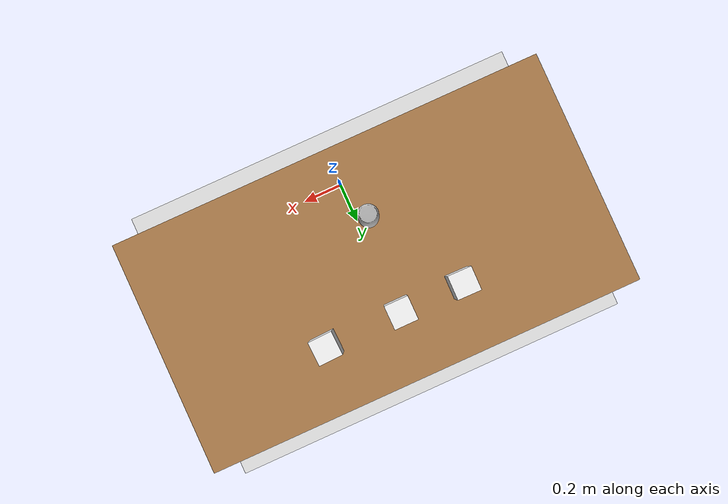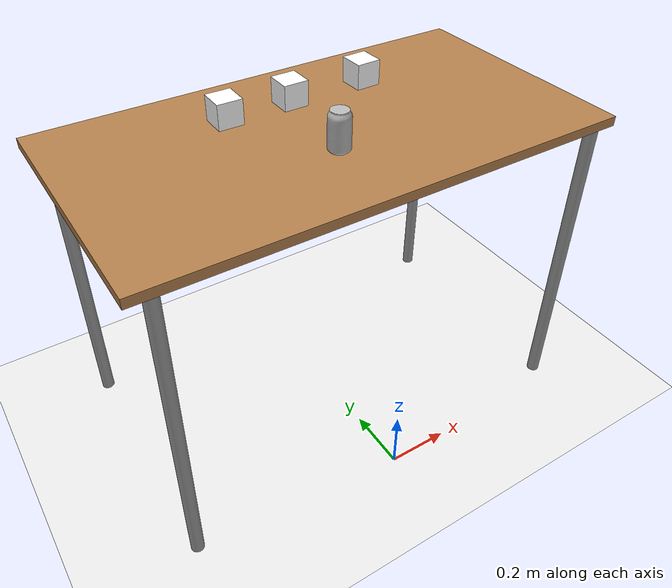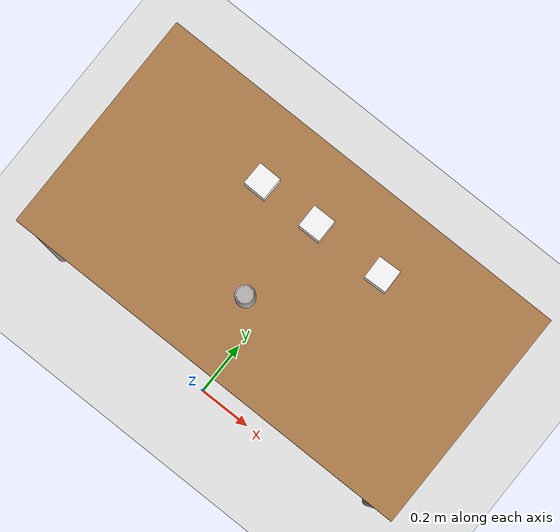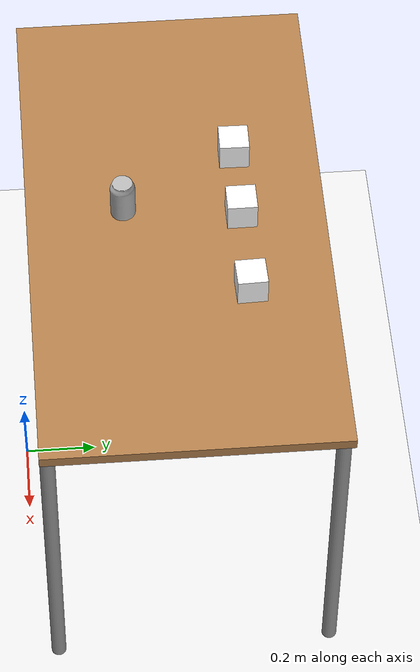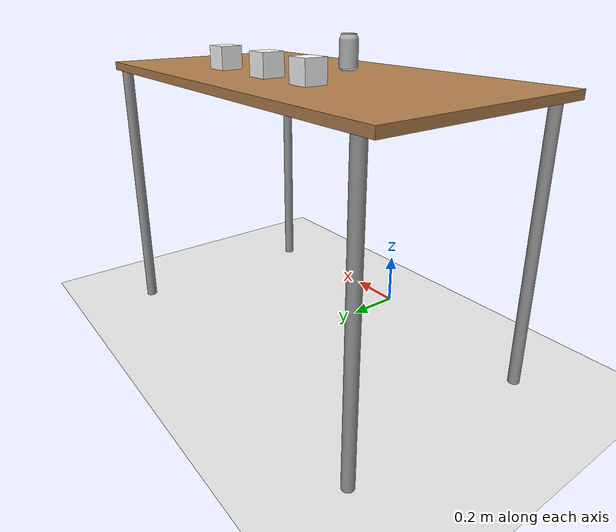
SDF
<sdf version="1.7">
 <world name="default">
  <plugin name="ros_link_attacher_plugin" filename="libgazebo_ros_link_attacher.so"/>
  <light name="sun" type="directional">
   <pose>0 0 10 0 -0 0</pose>
   <diffuse>0.8 0.8 0.8 1</diffuse>
   <specular>0.2 0.2 0.2 1</specular>
   <attenuation>
    <range>1000</range>
    <constant>0.9</constant>
    <linear>0.01</linear>
    <quadratic>0.001</quadratic>
   </attenuation>
   <direction>-0.5 0.1 -0.9</direction>
   <spot><inner_angle>0</inner_angle><outer_angle>0</outer_angle><falloff>0</falloff></spot>
  </light>
  <model name="ground_plane">
   <static>1</static>
   <link name="link">
    <collision name="collision">
     <geometry><plane><normal>0 0 1</normal><size>100 100</size></plane></geometry>
     <surface><friction><ode><mu>100</mu><mu2>50</mu2></ode></friction></surface>
    </collision>
    <visual name="visual">
     <cast_shadows>0</cast_shadows>
     <geometry><plane><normal>0 0 1</normal><size>100 100</size></plane></geometry>
     <material>
      <script><uri>file://media/materials/scripts/gazebo.material</uri><name>Gazebo/White</name></script>
     </material>
    </visual>
   </link>
  </model>
  <gravity>0 0 -9.8</gravity>
  <magnetic_field>6e-06 2.3e-05 -4.2e-05</magnetic_field>
  <atmosphere type="adiabatic"/>
  <physics type="ode">
   <max_step_size>0.001</max_step_size>
   <real_time_factor>1</real_time_factor>
   <real_time_update_rate>1000</real_time_update_rate>
  </physics>
  <scene><ambient>0.4 0.4 0.4 1</ambient><background>0.7 0.7 0.7 1</background><shadows>1</shadows></scene>
  <spherical_coordinates>
   <surface_model>EARTH_WGS84</surface_model>
   <latitude_deg>0</latitude_deg>
   <longitude_deg>0</longitude_deg>
   <elevation>0</elevation>
   <heading_deg>0</heading_deg>
  </spherical_coordinates>
  <model name="table">
   <static>1</static>
   <link name="link">
    <collision name="surface">
     <pose>0 0 1 0 -0 0</pose>
     <geometry><box><size>1.5 0.8 0.03</size></box></geometry>
     <surface><friction><ode><mu>0.6</mu><mu2>0.6</mu2></ode></friction></surface>
    </collision>
    <visual name="visual1">
     <pose>0 0 1 0 -0 0</pose>
     <geometry><box><size>1.5 0.8 0.03</size></box></geometry>
     <material>
      <script><uri>file://media/materials/scripts/gazebo.material</uri><name>Gazebo/Wood</name></script>
     </material>
    </visual>
    <collision name="front_left_leg">
     <pose>0.68 0.38 0.5 0 -0 0</pose>
     <geometry><cylinder><radius>0.02</radius><length>1</length></cylinder></geometry>
    </collision>
    <visual name="front_left_leg">
     <pose>0.68 0.38 0.5 0 -0 0</pose>
     <geometry><cylinder><radius>0.02</radius><length>1</length></cylinder></geometry>
     <material>
      <script><uri>file://media/materials/scripts/gazebo.material</uri><name>Gazebo/Grey</name></script>
     </material>
    </visual>
    <collision name="front_right_leg">
     <pose>0.68 -0.38 0.5 0 -0 0</pose>
     <geometry><cylinder><radius>0.02</radius><length>1</length></cylinder></geometry>
    </collision>
    <visual name="front_right_leg">
     <pose>0.68 -0.38 0.5 0 -0 0</pose>
     <geometry><cylinder><radius>0.02</radius><length>1</length></cylinder></geometry>
     <material>
      <script><uri>file://media/materials/scripts/gazebo.material</uri><name>Gazebo/Grey</name></script>
     </material>
    </visual>
    <collision name="back_right_leg">
     <pose>-0.68 -0.38 0.5 0 -0 0</pose>
     <geometry><cylinder><radius>0.02</radius><length>1</length></cylinder></geometry>
    </collision>
    <visual name="back_right_leg">
     <pose>-0.68 -0.38 0.5 0 -0 0</pose>
     <geometry><cylinder><radius>0.02</radius><length>1</length></cylinder></geometry>
     <material>
      <script><uri>file://media/materials/scripts/gazebo.material</uri><name>Gazebo/Grey</name></script>
     </material>
    </visual>
    <collision name="back_left_leg">
     <pose>-0.68 0.38 0.5 0 -0 0</pose>
     <geometry><cylinder><radius>0.02</radius><length>1</length></cylinder></geometry>
    </collision>
    <visual name="back_left_leg">
     <pose>-0.68 0.38 0.5 0 -0 0</pose>
     <geometry><cylinder><radius>0.02</radius><length>1</length></cylinder></geometry>
     <material>
      <script><uri>file://media/materials/scripts/gazebo.material</uri><name>Gazebo/Grey</name></script>
     </material>
    </visual>
   </link>
   <pose>0.005335 0.442116 0 0 -0 0</pose>
  </model>
  <model name="coke_can">
   <link name="link">
    <inertial>
     <pose>0 0 0.06 0 -0 0</pose>
     <mass>0.39</mass>
     <inertia>
      <ixx>0.00055575</ixx>
      <ixy>0</ixy>
      <ixz>0</ixz>
      <iyy>0.00055575</iyy>
      <iyz>0</iyz>
      <izz>0.0001755</izz>
     </inertia>
    </inertial>
    <collision name="collision">
     <pose>0.003937 0.004724 -0.18 0 -0 0</pose>
     <geometry><mesh><uri>model://coke_can/meshes/coke_can.dae</uri></mesh></geometry>
     <surface>
      <friction><ode><mu>1</mu><mu2>1</mu2></ode></friction>
      <contact><ode><kp>1e+07</kp><kd>1</kd><min_depth>0.001</min_depth><max_vel>0.1</max_vel></ode></contact>
     </surface>
    </collision>
    <visual name="visual">
     <pose>0.003937 0.004724 -0.18 0 -0 0</pose>
     <geometry><mesh><uri>model://coke_can/meshes/coke_can.dae</uri></mesh></geometry>
    </visual>
   </link>
   <pose>-0.032145 0.30239 1.01441 0 -0 0</pose>
  </model>
  <model name="number1">
   <link name="link">
    <inertial>
     <mass>1</mass>
     <inertia><ixx>1</ixx><ixy>0</ixy><ixz>0</ixz><iyy>1</iyy><iyz>0</iyz><izz>1</izz></inertia>
    </inertial>
    <visual name="visual">
     <geometry><mesh><uri>model://number1/meshes/number.dae</uri><scale>0.1 0.1 0.1</scale></mesh></geometry>
     <material>
      <script>
       <uri>model://number1/materials/scripts</uri>
       <uri>model://number1/materials/textures</uri>
       <name>Number/One</name>
      </script>
      <shader type="pixel"><normal_map>__default__</normal_map></shader>
      <ambient>1 1 1 1</ambient>
      <diffuse>1 1 1 1</diffuse>
      <specular>0 0 0 1</specular>
      <emissive>0 0 0 1</emissive>
     </material>
    </visual>
   </link>
   <static>1</static>
   <pose>-0.215529 0.612841 1.05595 0 0 -1.58477</pose>
  </model>
  <model name="number3">
   <link name="link">
    <inertial>
     <mass>1</mass>
     <inertia><ixx>1</ixx><ixy>0</ixy><ixz>0</ixz><iyy>1</iyy><iyz>0</iyz><izz>1</izz></inertia>
    </inertial>
    <visual name="visual">
     <geometry><mesh><uri>model://number1/meshes/number.dae</uri><scale>0.1 0.1 0.1</scale></mesh></geometry>
     <material>
      <script>
       <uri>model://number3/materials/scripts</uri>
       <uri>model://number3/materials/textures</uri>
       <name>Number/Three</name>
      </script>
      <shader type="pixel"><normal_map>__default__</normal_map></shader>
      <ambient>1 1 1 1</ambient>
      <diffuse>1 1 1 1</diffuse>
      <specular>0 0 0 1</specular>
      <emissive>0 0 0 1</emissive>
     </material>
    </visual>
   </link>
   <static>1</static>
   <pose>-0.000937 0.615471 1.05648 0 0 -1.56663</pose>
  </model>
  <model name="number5">
   <link name="link">
    <inertial>
     <mass>1</mass>
     <inertia><ixx>1</ixx><ixy>0</ixy><ixz>0</ixz><iyy>1</iyy><iyz>0</iyz><izz>1</izz></inertia>
    </inertial>
    <visual name="visual">
     <geometry><mesh><uri>model://number1/meshes/number.dae</uri><scale>0.1 0.1 0.1</scale></mesh></geometry>
     <material>
      <script>
       <uri>model://number5/materials/scripts</uri>
       <uri>model://number5/materials/textures</uri>
       <name>Number/Five</name>
      </script>
      <shader type="pixel"><normal_map>__default__</normal_map></shader>
      <ambient>1 1 1 1</ambient>
      <diffuse>1 1 1 1</diffuse>
      <specular>0 0 0 1</specular>
      <emissive>0 0 0 1</emissive>
     </material>
    </visual>
   </link>
   <static>1</static>
   <pose>0.25621 0.618856 1.05819 0 0 -1.53857</pose>
  </model>
 </world>
</sdf>
